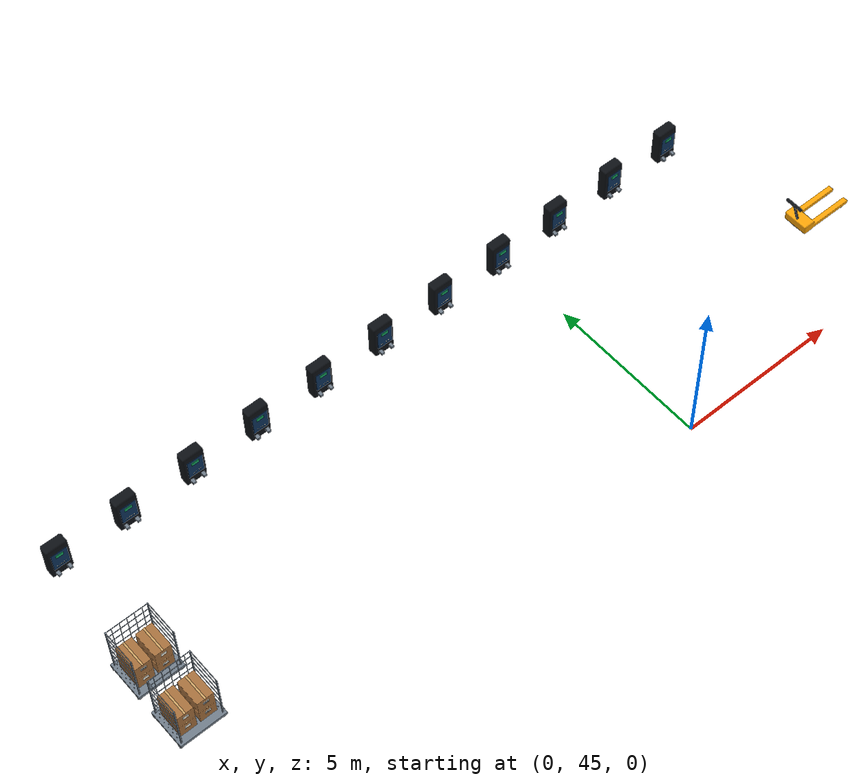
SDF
<sdf version="1.10">
 <world name="kinesis_warehouse">
  <include><uri>model://charge_dock</uri><name>charger_01</name><pose>-15 52.4 0 0 0 0</pose></include>
  <include><uri>model://charge_dock</uri><name>charger_02</name><pose>-12.9 52.4 0 0 0 0</pose></include>
  <include><uri>model://charge_dock</uri><name>charger_03</name><pose>-10.8 52.4 0 0 0 0</pose></include>
  <include><uri>model://charge_dock</uri><name>charger_04</name><pose>-8.7 52.4 0 0 0 0</pose></include>
  <include><uri>model://charge_dock</uri><name>charger_05</name><pose>-6.6 52.4 0 0 0 0</pose></include>
  <include><uri>model://charge_dock</uri><name>charger_06</name><pose>-4.5 52.4 0 0 0 0</pose></include>
  <include><uri>model://charge_dock</uri><name>charger_07</name><pose>-2.4 52.4 0 0 0 0</pose></include>
  <include><uri>model://charge_dock</uri><name>charger_08</name><pose>-0.3 52.4 0 0 0 0</pose></include>
  <include><uri>model://charge_dock</uri><name>charger_09</name><pose>1.8 52.4 0 0 0 0</pose></include>
  <include><uri>model://charge_dock</uri><name>charger_10</name><pose>3.9 52.4 0 0 0 0</pose></include>
  <include><uri>model://charge_dock</uri><name>charger_11</name><pose>6 52.4 0 0 0 0</pose></include>
  <include><uri>model://roll_cage</uri><name>receiving_cage_2</name><pose>-15 46.9 0 0 0 0</pose></include>
  <include><uri>model://roll_cage</uri><name>receiving_cage_3</name><pose>-15 48.6 0 0 0 0</pose></include>
  <include><uri>model://pallet_jack</uri><name>service_jack</name><pose>7.5 48 0 0 0 0</pose></include>
 </world>
</sdf>
